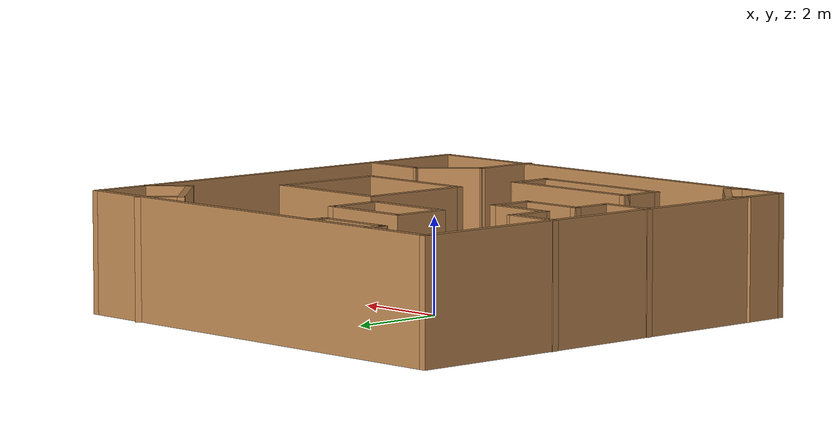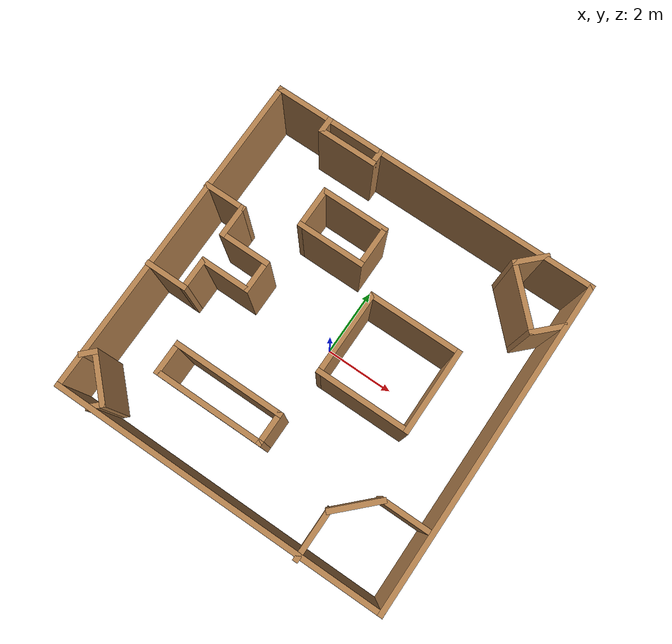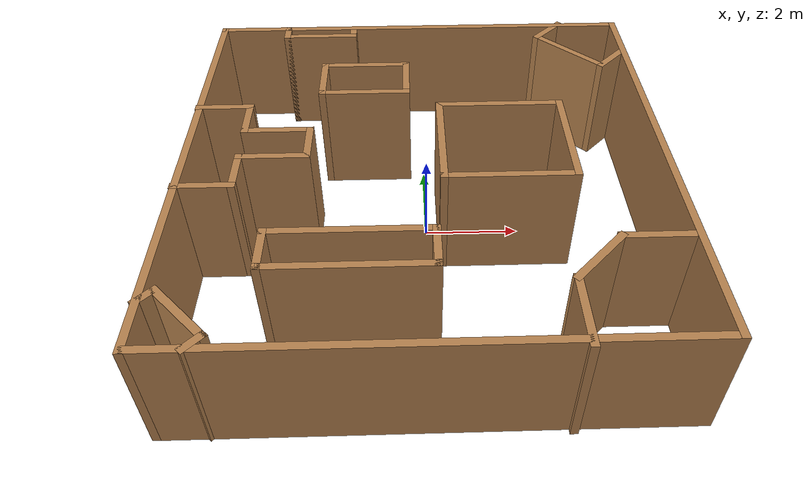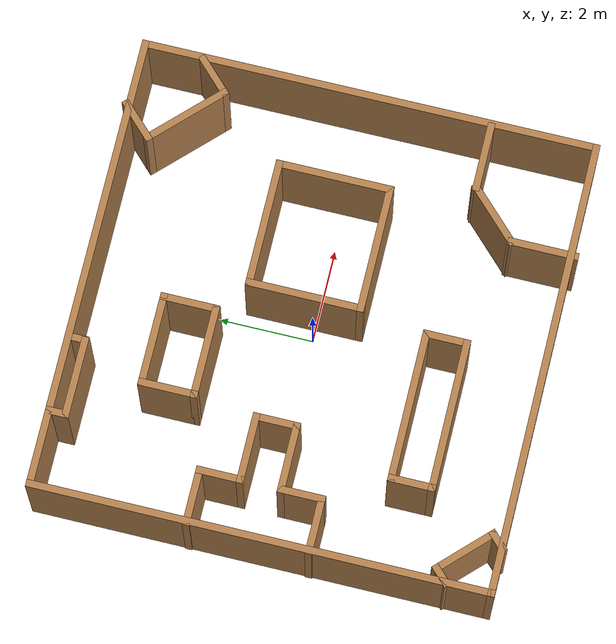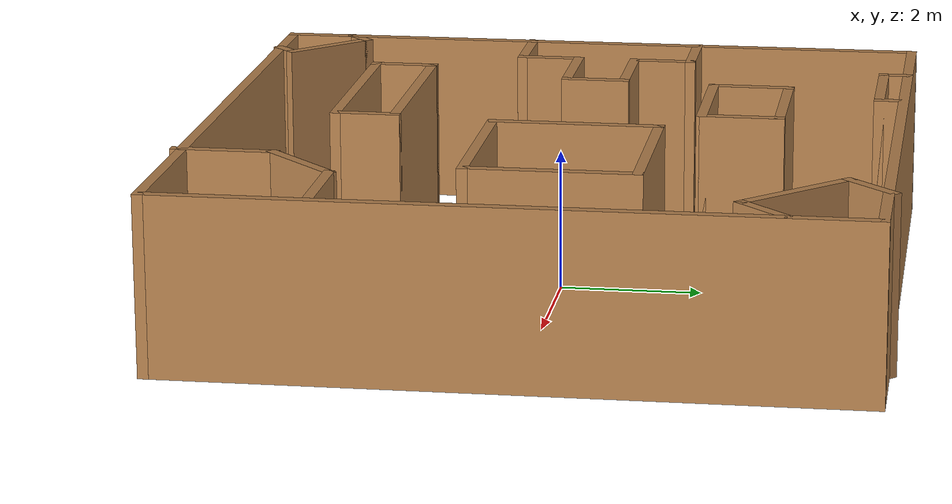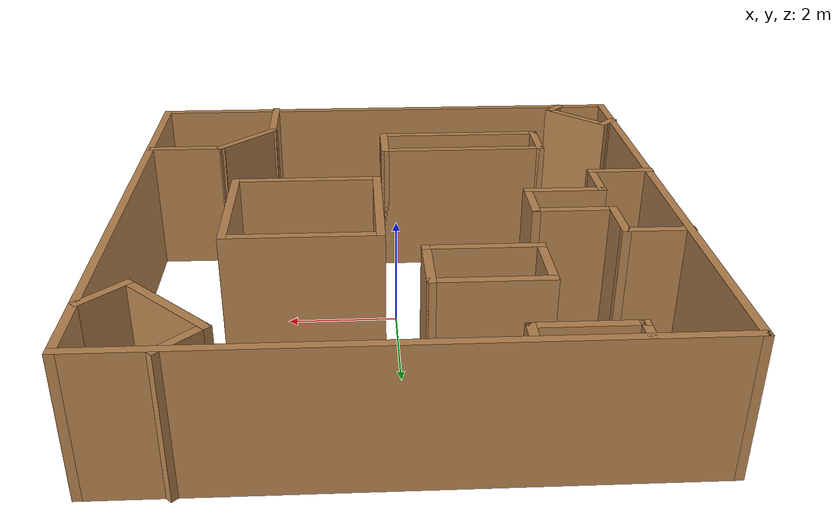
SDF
<?xml version='1.0'?>
<sdf version='1.6'>
  <model name='MIE444_Maze'>
    <pose frame=''>-0.038418 -0.062184 0 0 -0 0</pose>
    <link name='Wall_10'>
      <collision name='Wall_10_Collision'>
        <geometry>
          <box>
            <size>1.25 0.15 2.5</size>
          </box>
        </geometry>
        <pose frame=''>0 0 1.25 0 -0 0</pose>
      </collision>
      <visual name='Wall_10_Visual'>
        <pose frame=''>0 0 1.25 0 -0 0</pose>
        <geometry>
          <box>
            <size>1.25 0.15 2.5</size>
          </box>
        </geometry>
        <material>
          <script>
            <uri>file://media/materials/scripts/gazebo.material</uri>
            <name>Gazebo/Wood</name>
          </script>
          <ambient>1 1 1 1</ambient>
        </material>
        <meta>
          <layer>0</layer>
        </meta>
      </visual>
      <pose frame=''>-4.2498 -1.02853 0 0 -0 3.14159</pose>
    </link>
    <link name='Wall_12'>
      <collision name='Wall_12_Collision'>
        <geometry>
          <box>
            <size>3.25 0.15 2.5</size>
          </box>
        </geometry>
        <pose frame=''>0 0 1.25 0 -0 0</pose>
      </collision>
      <visual name='Wall_12_Visual'>
        <pose frame=''>0 0 1.25 0 -0 0</pose>
        <geometry>
          <box>
            <size>3.25 0.15 2.5</size>
          </box>
        </geometry>
        <material>
          <script>
            <uri>file://media/materials/scripts/gazebo.material</uri>
            <name>Gazebo/Wood</name>
          </script>
          <ambient>1 1 1 1</ambient>
        </material>
        <meta>
          <layer>0</layer>
        </meta>
      </visual>
      <pose frame=''>-1.40082 -2.29572 0 0 -0 0</pose>
    </link>
    <link name='Wall_13'>
      <collision name='Wall_13_Collision'>
        <geometry>
          <box>
            <size>1 0.15 2.5</size>
          </box>
        </geometry>
        <pose frame=''>0 0 1.25 0 -0 0</pose>
      </collision>
      <visual name='Wall_13_Visual'>
        <pose frame=''>0 0 1.25 0 -0 0</pose>
        <geometry>
          <box>
            <size>1 0.15 2.5</size>
          </box>
        </geometry>
        <material>
          <script>
            <uri>file://media/materials/scripts/gazebo.material</uri>
            <name>Gazebo/Wood</name>
          </script>
          <ambient>1 1 1 1</ambient>
        </material>
        <meta>
          <layer>0</layer>
        </meta>
      </visual>
      <pose frame=''>0.14918 -2.72072 0 0 -0 -1.5708</pose>
    </link>
    <link name='Wall_14'>
      <collision name='Wall_14_Collision'>
        <geometry>
          <box>
            <size>3.25 0.15 2.5</size>
          </box>
        </geometry>
        <pose frame=''>0 0 1.25 0 -0 0</pose>
      </collision>
      <visual name='Wall_14_Visual'>
        <pose frame=''>0 0 1.25 0 -0 0</pose>
        <geometry>
          <box>
            <size>3.25 0.15 2.5</size>
          </box>
        </geometry>
        <material>
          <script>
            <uri>file://media/materials/scripts/gazebo.material</uri>
            <name>Gazebo/Wood</name>
          </script>
          <ambient>1 1 1 1</ambient>
        </material>
        <meta>
          <layer>0</layer>
        </meta>
      </visual>
      <pose frame=''>-1.40082 -3.14572 0 0 -0 3.14159</pose>
    </link>
    <link name='Wall_15'>
      <collision name='Wall_15_Collision'>
        <geometry>
          <box>
            <size>1 0.15 2.5</size>
          </box>
        </geometry>
        <pose frame=''>0 0 1.25 0 -0 0</pose>
      </collision>
      <visual name='Wall_15_Visual'>
        <pose frame=''>0 0 1.25 0 -0 0</pose>
        <geometry>
          <box>
            <size>1 0.15 2.5</size>
          </box>
        </geometry>
        <material>
          <script>
            <uri>file://media/materials/scripts/gazebo.material</uri>
            <name>Gazebo/Wood</name>
          </script>
          <ambient>1 1 1 1</ambient>
        </material>
        <meta>
          <layer>0</layer>
        </meta>
      </visual>
      <pose frame=''>-2.95082 -2.72072 0 0 -0 1.5708</pose>
    </link>
    <link name='Wall_17'>
      <collision name='Wall_17_Collision'>
        <geometry>
          <box>
            <size>2.75 0.15 2.5</size>
          </box>
        </geometry>
        <pose frame=''>0 0 1.25 0 -0 0</pose>
      </collision>
      <visual name='Wall_17_Visual'>
        <pose frame=''>0 0 1.25 0 -0 0</pose>
        <geometry>
          <box>
            <size>2.75 0.15 2.5</size>
          </box>
        </geometry>
        <material>
          <script>
            <uri>file://media/materials/scripts/gazebo.material</uri>
            <name>Gazebo/Wood</name>
          </script>
          <ambient>1 1 1 1</ambient>
        </material>
        <meta>
          <layer>0</layer>
        </meta>
      </visual>
      <pose frame=''>1.6548 1.48214 0 0 -0 0</pose>
    </link>
    <link name='Wall_18'>
      <collision name='Wall_18_Collision'>
        <geometry>
          <box>
            <size>2.5 0.15 2.5</size>
          </box>
        </geometry>
        <pose frame=''>0 0 1.25 0 -0 0</pose>
      </collision>
      <visual name='Wall_18_Visual'>
        <pose frame=''>0 0 1.25 0 -0 0</pose>
        <geometry>
          <box>
            <size>2.5 0.15 2.5</size>
          </box>
        </geometry>
        <material>
          <script>
            <uri>file://media/materials/scripts/gazebo.material</uri>
            <name>Gazebo/Wood</name>
          </script>
          <ambient>1 1 1 1</ambient>
        </material>
        <meta>
          <layer>0</layer>
        </meta>
      </visual>
      <pose frame=''>2.9548 0.307138 0 0 -0 -1.5708</pose>
    </link>
    <link name='Wall_19'>
      <collision name='Wall_19_Collision'>
        <geometry>
          <box>
            <size>2.75 0.15 2.5</size>
          </box>
        </geometry>
        <pose frame=''>0 0 1.25 0 -0 0</pose>
      </collision>
      <visual name='Wall_19_Visual'>
        <pose frame=''>0 0 1.25 0 -0 0</pose>
        <geometry>
          <box>
            <size>2.75 0.15 2.5</size>
          </box>
        </geometry>
        <material>
          <script>
            <uri>file://media/materials/scripts/gazebo.material</uri>
            <name>Gazebo/Wood</name>
          </script>
          <ambient>1 1 1 1</ambient>
        </material>
        <meta>
          <layer>0</layer>
        </meta>
      </visual>
      <pose frame=''>1.6548 -0.867862 0 0 -0 3.14159</pose>
    </link>
    <link name='Wall_20'>
      <collision name='Wall_20_Collision'>
        <geometry>
          <box>
            <size>2.5 0.15 2.5</size>
          </box>
        </geometry>
        <pose frame=''>0 0 1.25 0 -0 0</pose>
      </collision>
      <visual name='Wall_20_Visual'>
        <pose frame=''>0 0 1.25 0 -0 0</pose>
        <geometry>
          <box>
            <size>2.5 0.15 2.5</size>
          </box>
        </geometry>
        <material>
          <script>
            <uri>file://media/materials/scripts/gazebo.material</uri>
            <name>Gazebo/Wood</name>
          </script>
          <ambient>1 1 1 1</ambient>
        </material>
        <meta>
          <layer>0</layer>
        </meta>
      </visual>
      <pose frame=''>0.354802 0.307138 0 0 -0 1.5708</pose>
    </link>
    <link name='Wall_22'>
      <collision name='Wall_22_Collision'>
        <geometry>
          <box>
            <size>2 0.15 2.5</size>
          </box>
        </geometry>
        <pose frame=''>0 0 1.25 0 -0 0</pose>
      </collision>
      <visual name='Wall_22_Visual'>
        <pose frame=''>0 0 1.25 0 -0 0</pose>
        <geometry>
          <box>
            <size>2 0.15 2.5</size>
          </box>
        </geometry>
        <material>
          <script>
            <uri>file://media/materials/scripts/gazebo.material</uri>
            <name>Gazebo/Wood</name>
          </script>
          <ambient>1 1 1 1</ambient>
        </material>
        <meta>
          <layer>0</layer>
        </meta>
      </visual>
      <pose frame=''>-1.27375 3.10871 0 0 -0 0</pose>
    </link>
    <link name='Wall_23'>
      <collision name='Wall_23_Collision'>
        <geometry>
          <box>
            <size>1.25 0.15 2.5</size>
          </box>
        </geometry>
        <pose frame=''>0 0 1.25 0 -0 0</pose>
      </collision>
      <visual name='Wall_23_Visual'>
        <pose frame=''>0 0 1.25 0 -0 0</pose>
        <geometry>
          <box>
            <size>1.25 0.15 2.5</size>
          </box>
        </geometry>
        <material>
          <script>
            <uri>file://media/materials/scripts/gazebo.material</uri>
            <name>Gazebo/Wood</name>
          </script>
          <ambient>1 1 1 1</ambient>
        </material>
        <meta>
          <layer>0</layer>
        </meta>
      </visual>
      <pose frame=''>-0.348747 2.55871 0 0 -0 -1.5708</pose>
    </link>
    <link name='Wall_24'>
      <collision name='Wall_24_Collision'>
        <geometry>
          <box>
            <size>2 0.15 2.5</size>
          </box>
        </geometry>
        <pose frame=''>0 0 1.25 0 -0 0</pose>
      </collision>
      <visual name='Wall_24_Visual'>
        <pose frame=''>0 0 1.25 0 -0 0</pose>
        <geometry>
          <box>
            <size>2 0.15 2.5</size>
          </box>
        </geometry>
        <material>
          <script>
            <uri>file://media/materials/scripts/gazebo.material</uri>
            <name>Gazebo/Wood</name>
          </script>
          <ambient>1 1 1 1</ambient>
        </material>
        <meta>
          <layer>0</layer>
        </meta>
      </visual>
      <pose frame=''>-1.27375 2.00871 0 0 -0 3.14159</pose>
    </link>
    <link name='Wall_25'>
      <collision name='Wall_25_Collision'>
        <geometry>
          <box>
            <size>1.25 0.15 2.5</size>
          </box>
        </geometry>
        <pose frame=''>0 0 1.25 0 -0 0</pose>
      </collision>
      <visual name='Wall_25_Visual'>
        <pose frame=''>0 0 1.25 0 -0 0</pose>
        <geometry>
          <box>
            <size>1.25 0.15 2.5</size>
          </box>
        </geometry>
        <material>
          <script>
            <uri>file://media/materials/scripts/gazebo.material</uri>
            <name>Gazebo/Wood</name>
          </script>
          <ambient>1 1 1 1</ambient>
        </material>
        <meta>
          <layer>0</layer>
        </meta>
      </visual>
      <pose frame=''>-2.19875 2.55871 0 0 -0 1.5708</pose>
    </link>
    <link name='Wall_27'>
      <collision name='Wall_27_Collision'>
        <geometry>
          <box>
            <size>1.5 0.15 2.5</size>
          </box>
        </geometry>
        <pose frame=''>0 0 1.25 0 -0 0</pose>
      </collision>
      <visual name='Wall_27_Visual'>
        <pose frame=''>0 0 1.25 0 -0 0</pose>
        <geometry>
          <box>
            <size>1.5 0.15 2.5</size>
          </box>
        </geometry>
        <material>
          <script>
            <uri>file://media/materials/scripts/gazebo.material</uri>
            <name>Gazebo/Wood</name>
          </script>
          <ambient>1 1 1 1</ambient>
        </material>
        <meta>
          <layer>0</layer>
        </meta>
      </visual>
      <pose frame=''>4.09098 -2.5845 0 0 -0 3.14159</pose>
    </link>
    <link name='Wall_28'>
      <collision name='Wall_28_Collision'>
        <geometry>
          <box>
            <size>1.5 0.15 2.5</size>
          </box>
        </geometry>
        <pose frame=''>0 0 1.25 0 -0 0</pose>
      </collision>
      <visual name='Wall_28_Visual'>
        <pose frame=''>0 0 1.25 0 -0 0</pose>
        <geometry>
          <box>
            <size>1.5 0.15 2.5</size>
          </box>
        </geometry>
        <material>
          <script>
            <uri>file://media/materials/scripts/gazebo.material</uri>
            <name>Gazebo/Wood</name>
          </script>
          <ambient>1 1 1 1</ambient>
        </material>
        <meta>
          <layer>0</layer>
        </meta>
      </visual>
      <pose frame=''>2.93868 -3.0618 0 0 -0 -2.35619</pose>
    </link>
    <link name='Wall_29'>
      <collision name='Wall_29_Collision'>
        <geometry>
          <box>
            <size>1.5 0.15 2.5</size>
          </box>
        </geometry>
        <pose frame=''>0 0 1.25 0 -0 0</pose>
      </collision>
      <visual name='Wall_29_Visual'>
        <pose frame=''>0 0 1.25 0 -0 0</pose>
        <geometry>
          <box>
            <size>1.5 0.15 2.5</size>
          </box>
        </geometry>
        <material>
          <script>
            <uri>file://media/materials/scripts/gazebo.material</uri>
            <name>Gazebo/Wood</name>
          </script>
          <ambient>1 1 1 1</ambient>
        </material>
        <meta>
          <layer>0</layer>
        </meta>
      </visual>
      <pose frame=''>2.46138 -4.2141 0 0 -0 -1.5708</pose>
    </link>
    <link name='Wall_3'>
      <collision name='Wall_3_Collision'>
        <geometry>
          <box>
            <size>1.5 0.15 2.5</size>
          </box>
        </geometry>
        <pose frame=''>0 0 1.25 0 -0 0</pose>
      </collision>
      <visual name='Wall_3_Visual'>
        <pose frame=''>0 0 1.25 0 -0 0</pose>
        <geometry>
          <box>
            <size>1.5 0.15 2.5</size>
          </box>
        </geometry>
        <material>
          <script>
            <uri>file://media/materials/scripts/gazebo.material</uri>
            <name>Gazebo/Wood</name>
          </script>
          <ambient>1 1 1 1</ambient>
        </material>
        <meta>
          <layer>0</layer>
        </meta>
      </visual>
      <pose frame=''>-3.02481 0.671465 0 0 -0 3.14159</pose>
    </link>
    <link name='Wall_35'>
      <collision name='Wall_35_Collision'>
        <geometry>
          <box>
            <size>0.5 0.15 2.5</size>
          </box>
        </geometry>
        <pose frame=''>0 0 1.25 0 -0 0</pose>
      </collision>
      <visual name='Wall_35_Visual'>
        <pose frame=''>0 0 1.25 0 -0 0</pose>
        <geometry>
          <box>
            <size>0.5 0.15 2.5</size>
          </box>
        </geometry>
        <material>
          <script>
            <uri>file://media/materials/scripts/gazebo.material</uri>
            <name>Gazebo/Wood</name>
          </script>
          <ambient>1 1 1 1</ambient>
        </material>
        <meta>
          <layer>0</layer>
        </meta>
      </visual>
      <pose frame=''>-4.6651 -3.73394 0 0 -0 0.785398</pose>
    </link>
    <link name='Wall_36'>
      <collision name='Wall_36_Collision'>
        <geometry>
          <box>
            <size>1.5 0.15 2.5</size>
          </box>
        </geometry>
        <pose frame=''>0 0 1.25 0 -0 0</pose>
      </collision>
      <visual name='Wall_36_Visual'>
        <pose frame=''>0 0 1.25 0 -0 0</pose>
        <geometry>
          <box>
            <size>1.5 0.15 2.5</size>
          </box>
        </geometry>
        <material>
          <script>
            <uri>file://media/materials/scripts/gazebo.material</uri>
            <name>Gazebo/Wood</name>
          </script>
          <ambient>1 1 1 1</ambient>
        </material>
        <meta>
          <layer>0</layer>
        </meta>
      </visual>
      <pose frame=''>-4.06406 -4.08749 0 0 -0 -0.785398</pose>
    </link>
    <link name='Wall_37'>
      <collision name='Wall_37_Collision'>
        <geometry>
          <box>
            <size>0.5 0.15 2.5</size>
          </box>
        </geometry>
        <pose frame=''>0 0 1.25 0 -0 0</pose>
      </collision>
      <visual name='Wall_37_Visual'>
        <pose frame=''>0 0 1.25 0 -0 0</pose>
        <geometry>
          <box>
            <size>0.5 0.15 2.5</size>
          </box>
        </geometry>
        <material>
          <script>
            <uri>file://media/materials/scripts/gazebo.material</uri>
            <name>Gazebo/Wood</name>
          </script>
          <ambient>1 1 1 1</ambient>
        </material>
        <meta>
          <layer>0</layer>
        </meta>
      </visual>
      <pose frame=''>-3.71051 -4.68853 0 0 -0 -2.35619</pose>
    </link>
    <link name='Wall_39'>
      <collision name='Wall_39_Collision'>
        <geometry>
          <box>
            <size>1 0.15 2.5</size>
          </box>
        </geometry>
        <pose frame=''>0 0 1.25 0 -0 0</pose>
      </collision>
      <visual name='Wall_39_Visual'>
        <pose frame=''>0 0 1.25 0 -0 0</pose>
        <geometry>
          <box>
            <size>1 0.15 2.5</size>
          </box>
        </geometry>
        <material>
          <script>
            <uri>file://media/materials/scripts/gazebo.material</uri>
            <name>Gazebo/Wood</name>
          </script>
          <ambient>1 1 1 1</ambient>
        </material>
        <meta>
          <layer>0</layer>
        </meta>
      </visual>
      <pose frame=''>4.47797 3.24936 0 0 -0 -2.35619</pose>
    </link>
    <link name='Wall_4'>
      <collision name='Wall_4_Collision'>
        <geometry>
          <box>
            <size>1 0.15 2.5</size>
          </box>
        </geometry>
        <pose frame=''>0 0 1.25 0 -0 0</pose>
      </collision>
      <visual name='Wall_4_Visual'>
        <pose frame=''>0 0 1.25 0 -0 0</pose>
        <geometry>
          <box>
            <size>1 0.15 2.5</size>
          </box>
        </geometry>
        <material>
          <script>
            <uri>file://media/materials/scripts/gazebo.material</uri>
            <name>Gazebo/Wood</name>
          </script>
          <ambient>1 1 1 1</ambient>
        </material>
        <meta>
          <layer>0</layer>
        </meta>
      </visual>
      <pose frame=''>-3.69981 1.09647 0 0 -0 1.5708</pose>
    </link>
    <link name='Wall_40'>
      <collision name='Wall_40_Collision'>
        <geometry>
          <box>
            <size>2 0.15 2.5</size>
          </box>
        </geometry>
        <pose frame=''>0 0 1.25 0 -0 0</pose>
      </collision>
      <visual name='Wall_40_Visual'>
        <pose frame=''>0 0 1.25 0 -0 0</pose>
        <geometry>
          <box>
            <size>2 0.15 2.5</size>
          </box>
        </geometry>
        <material>
          <script>
            <uri>file://media/materials/scripts/gazebo.material</uri>
            <name>Gazebo/Wood</name>
          </script>
          <ambient>1 1 1 1</ambient>
        </material>
        <meta>
          <layer>0</layer>
        </meta>
      </visual>
      <pose frame=''>3.52338 3.60292 0 0 -0 2.35619</pose>
    </link>
    <link name='Wall_41'>
      <collision name='Wall_41_Collision'>
        <geometry>
          <box>
            <size>1 0.15 2.5</size>
          </box>
        </geometry>
        <pose frame=''>0 0 1.25 0 -0 0</pose>
      </collision>
      <visual name='Wall_41_Visual'>
        <pose frame=''>0 0 1.25 0 -0 0</pose>
        <geometry>
          <box>
            <size>1 0.15 2.5</size>
          </box>
        </geometry>
        <material>
          <script>
            <uri>file://media/materials/scripts/gazebo.material</uri>
            <name>Gazebo/Wood</name>
          </script>
          <ambient>1 1 1 1</ambient>
        </material>
        <meta>
          <layer>0</layer>
        </meta>
      </visual>
      <pose frame=''>3.16983 4.55751 0 0 -0 0.785398</pose>
    </link>
    <link name='Wall_43'>
      <collision name='Wall_43_Collision'>
        <geometry>
          <box>
            <size>0.5 0.15 2.5</size>
          </box>
        </geometry>
        <pose frame=''>0 0 1.25 0 -0 0</pose>
      </collision>
      <visual name='Wall_43_Visual'>
        <pose frame=''>0 0 1.25 0 -0 0</pose>
        <geometry>
          <box>
            <size>0.5 0.15 2.5</size>
          </box>
        </geometry>
        <material>
          <script>
            <uri>file://media/materials/scripts/gazebo.material</uri>
            <name>Gazebo/Wood</name>
          </script>
          <ambient>1 1 1 1</ambient>
        </material>
        <meta>
          <layer>0</layer>
        </meta>
      </visual>
      <pose frame=''>-3.21447 4.62304 0 0 -0 -1.5708</pose>
    </link>
    <link name='Wall_44'>
      <collision name='Wall_44_Collision'>
        <geometry>
          <box>
            <size>1.75 0.15 2.5</size>
          </box>
        </geometry>
        <pose frame=''>0 0 1.25 0 -0 0</pose>
      </collision>
      <visual name='Wall_44_Visual'>
        <pose frame=''>0 0 1.25 0 -0 0</pose>
        <geometry>
          <box>
            <size>1.75 0.15 2.5</size>
          </box>
        </geometry>
        <material>
          <script>
            <uri>file://media/materials/scripts/gazebo.material</uri>
            <name>Gazebo/Wood</name>
          </script>
          <ambient>1 1 1 1</ambient>
        </material>
        <meta>
          <layer>0</layer>
        </meta>
      </visual>
      <pose frame=''>-2.41447 4.44804 0 0 -0 0</pose>
    </link>
    <link name='Wall_45'>
      <collision name='Wall_45_Collision'>
        <geometry>
          <box>
            <size>0.5 0.15 2.5</size>
          </box>
        </geometry>
        <pose frame=''>0 0 1.25 0 -0 0</pose>
      </collision>
      <visual name='Wall_45_Visual'>
        <pose frame=''>0 0 1.25 0 -0 0</pose>
        <geometry>
          <box>
            <size>0.5 0.15 2.5</size>
          </box>
        </geometry>
        <material>
          <script>
            <uri>file://media/materials/scripts/gazebo.material</uri>
            <name>Gazebo/Wood</name>
          </script>
          <ambient>1 1 1 1</ambient>
        </material>
        <meta>
          <layer>0</layer>
        </meta>
      </visual>
      <pose frame=''>-1.61447 4.62304 0 0 -0 1.5708</pose>
    </link>
    <link name='Wall_47'>
      <collision name='Wall_47_Collision'>
        <geometry>
          <box>
            <size>9.75 0.15 2.5</size>
          </box>
        </geometry>
        <pose frame=''>0 0 1.25 0 -0 0</pose>
      </collision>
      <visual name='Wall_47_Visual'>
        <pose frame=''>0 0 1.25 0 -0 0</pose>
        <geometry>
          <box>
            <size>9.75 0.15 2.5</size>
          </box>
        </geometry>
        <material>
          <script>
            <uri>file://media/materials/scripts/gazebo.material</uri>
            <name>Gazebo/Wood</name>
          </script>
          <ambient>1 1 1 1</ambient>
        </material>
        <meta>
          <layer>0</layer>
        </meta>
      </visual>
      <pose frame=''>0.019912 4.79955 0 0 -0 0</pose>
    </link>
    <link name='Wall_48'>
      <collision name='Wall_48_Collision'>
        <geometry>
          <box>
            <size>9.75 0.15 2.5</size>
          </box>
        </geometry>
        <pose frame=''>0 0 1.25 0 -0 0</pose>
      </collision>
      <visual name='Wall_48_Visual'>
        <pose frame=''>0 0 1.25 0 -0 0</pose>
        <geometry>
          <box>
            <size>9.75 0.15 2.5</size>
          </box>
        </geometry>
        <material>
          <script>
            <uri>file://media/materials/scripts/gazebo.material</uri>
            <name>Gazebo/Wood</name>
          </script>
          <ambient>1 1 1 1</ambient>
        </material>
        <meta>
          <layer>0</layer>
        </meta>
      </visual>
      <pose frame=''>4.81991 -0.000445 0 0 -0 -1.5708</pose>
    </link>
    <link name='Wall_49'>
      <collision name='Wall_49_Collision'>
        <geometry>
          <box>
            <size>9.75 0.15 2.5</size>
          </box>
        </geometry>
        <pose frame=''>0 0 1.25 0 -0 0</pose>
      </collision>
      <visual name='Wall_49_Visual'>
        <pose frame=''>0 0 1.25 0 -0 0</pose>
        <geometry>
          <box>
            <size>9.75 0.15 2.5</size>
          </box>
        </geometry>
        <material>
          <script>
            <uri>file://media/materials/scripts/gazebo.material</uri>
            <name>Gazebo/Wood</name>
          </script>
          <ambient>1 1 1 1</ambient>
        </material>
        <meta>
          <layer>0</layer>
        </meta>
      </visual>
      <pose frame=''>0.019912 -4.80045 0 0 -0 3.14159</pose>
    </link>
    <link name='Wall_5'>
      <collision name='Wall_5_Collision'>
        <geometry>
          <box>
            <size>1.25 0.15 2.5</size>
          </box>
        </geometry>
        <pose frame=''>0 0 1.25 0 -0 0</pose>
      </collision>
      <visual name='Wall_5_Visual'>
        <pose frame=''>0 0 1.25 0 -0 0</pose>
        <geometry>
          <box>
            <size>1.25 0.15 2.5</size>
          </box>
        </geometry>
        <material>
          <script>
            <uri>file://media/materials/scripts/gazebo.material</uri>
            <name>Gazebo/Wood</name>
          </script>
          <ambient>1 1 1 1</ambient>
        </material>
        <meta>
          <layer>0</layer>
        </meta>
      </visual>
      <pose frame=''>-4.2498 1.52147 0 0 -0 3.14159</pose>
    </link>
    <link name='Wall_50'>
      <collision name='Wall_50_Collision'>
        <geometry>
          <box>
            <size>9.75 0.15 2.5</size>
          </box>
        </geometry>
        <pose frame=''>0 0 1.25 0 -0 0</pose>
      </collision>
      <visual name='Wall_50_Visual'>
        <pose frame=''>0 0 1.25 0 -0 0</pose>
        <geometry>
          <box>
            <size>9.75 0.15 2.5</size>
          </box>
        </geometry>
        <material>
          <script>
            <uri>file://media/materials/scripts/gazebo.material</uri>
            <name>Gazebo/Wood</name>
          </script>
          <ambient>1 1 1 1</ambient>
        </material>
        <meta>
          <layer>0</layer>
        </meta>
      </visual>
      <pose frame=''>-4.78009 -0.000445 0 0 -0 1.5708</pose>
    </link>
    <link name='Wall_7'>
      <collision name='Wall_7_Collision'>
        <geometry>
          <box>
            <size>1 0.15 2.5</size>
          </box>
        </geometry>
        <pose frame=''>0 0 1.25 0 -0 0</pose>
      </collision>
      <visual name='Wall_7_Visual'>
        <pose frame=''>0 0 1.25 0 -0 0</pose>
        <geometry>
          <box>
            <size>1 0.15 2.5</size>
          </box>
        </geometry>
        <material>
          <script>
            <uri>file://media/materials/scripts/gazebo.material</uri>
            <name>Gazebo/Wood</name>
          </script>
          <ambient>1 1 1 1</ambient>
        </material>
        <meta>
          <layer>0</layer>
        </meta>
      </visual>
      <pose frame=''>-2.3498 0.246465 0 0 -0 -1.5708</pose>
    </link>
    <link name='Wall_8'>
      <collision name='Wall_8_Collision'>
        <geometry>
          <box>
            <size>1.5 0.15 2.5</size>
          </box>
        </geometry>
        <pose frame=''>0 0 1.25 0 -0 0</pose>
      </collision>
      <visual name='Wall_8_Visual'>
        <pose frame=''>0 0 1.25 0 -0 0</pose>
        <geometry>
          <box>
            <size>1.5 0.15 2.5</size>
          </box>
        </geometry>
        <material>
          <script>
            <uri>file://media/materials/scripts/gazebo.material</uri>
            <name>Gazebo/Wood</name>
          </script>
          <ambient>1 1 1 1</ambient>
        </material>
        <meta>
          <layer>0</layer>
        </meta>
      </visual>
      <pose frame=''>-3.02481 -0.178535 0 0 -0 3.14159</pose>
    </link>
    <link name='Wall_9'>
      <collision name='Wall_9_Collision'>
        <geometry>
          <box>
            <size>1 0.15 2.5</size>
          </box>
        </geometry>
        <pose frame=''>0 0 1.25 0 -0 0</pose>
      </collision>
      <visual name='Wall_9_Visual'>
        <pose frame=''>0 0 1.25 0 -0 0</pose>
        <geometry>
          <box>
            <size>1 0.15 2.5</size>
          </box>
        </geometry>
        <material>
          <script>
            <uri>file://media/materials/scripts/gazebo.material</uri>
            <name>Gazebo/Wood</name>
          </script>
          <ambient>1 1 1 1</ambient>
        </material>
        <meta>
          <layer>0</layer>
        </meta>
      </visual>
      <pose frame=''>-3.69981 -0.603535 0 0 -0 -1.5708</pose>
    </link>
    <static>1</static>
  </model>
</sdf>
